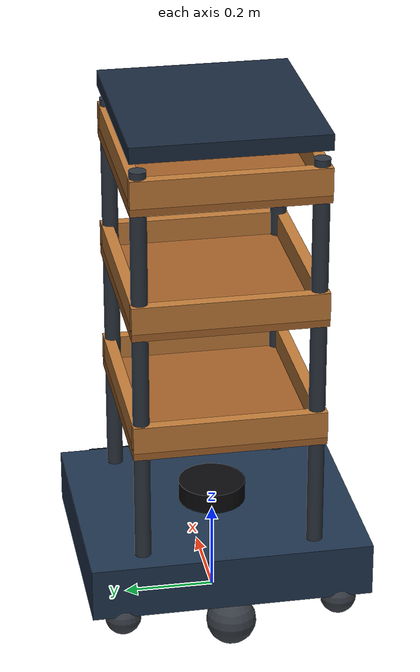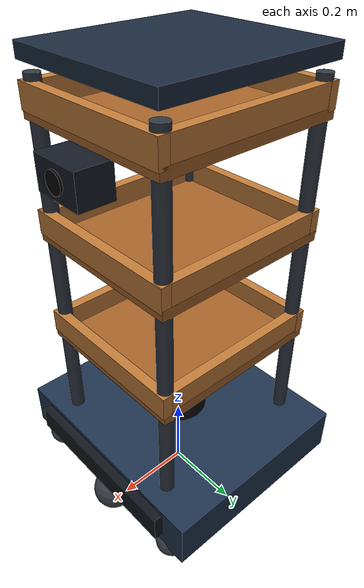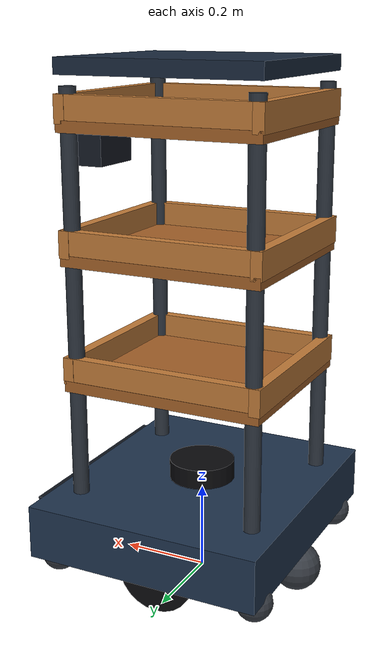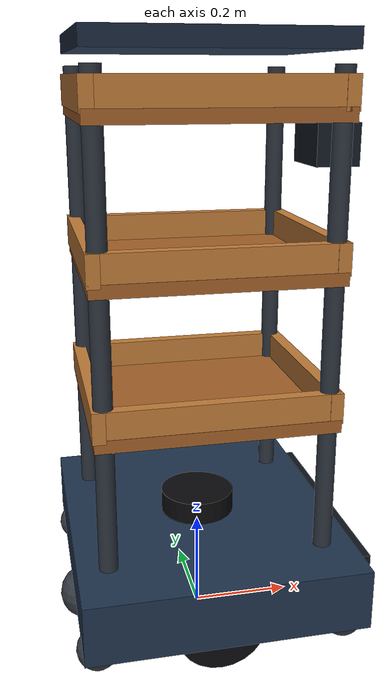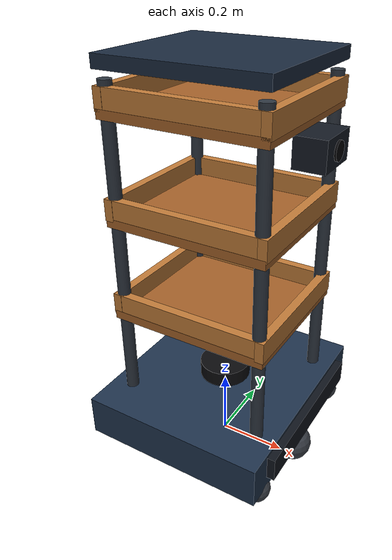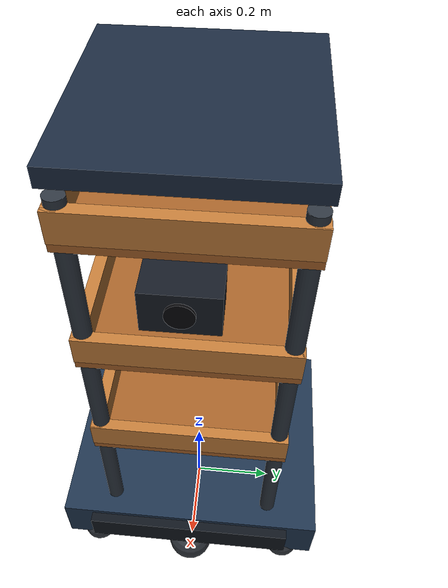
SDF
<?xml version="1.0"?>
<!--
  Generic Cafe Service AMR.
  SDF owns Gazebo geometry, collisions, inertials, joints, systems, and sensors.
  ROS-facing names are preserved by the Phase 4 launch and bridge.
-->
<sdf version="1.9">
  <model name="amr_robot">
    <pose>0 0 0 0 0 0</pose>
    <self_collide>false</self_collide>
    <allow_auto_disable>false</allow_auto_disable>

    <link name="base_footprint"/>

    <joint name="base_joint" type="fixed">
      <parent>base_footprint</parent>
      <child>base_link</child>
    </joint>

    <!-- Low, heavy chassis: nominal centre of mass z ~= 0.18 m. -->
    <link name="base_link">
      <pose>0 0 0.165 0 0 0</pose>
      <visual name="chassis_visual">
        <geometry><box><size>0.54 0.62 0.12</size></box></geometry>
        <material>
          <ambient>0.08 0.12 0.18 1</ambient>
          <diffuse>0.12 0.20 0.30 1</diffuse>
          <specular>0.25 0.30 0.35 1</specular>
        </material>
      </visual>
      <visual name="front_bumper_visual">
        <pose>0.275 0 0.015 0 0 0</pose>
        <geometry><box><size>0.035 0.48 0.07</size></box></geometry>
        <material>
          <ambient>0.04 0.05 0.07 1</ambient>
          <diffuse>0.06 0.08 0.11 1</diffuse>
        </material>
      </visual>
      <collision name="chassis_collision">
        <geometry><box><size>0.54 0.62 0.12</size></box></geometry>
      </collision>
      <collision name="front_bumper_collision">
        <pose>0.275 0 0.015 0 0 0</pose>
        <geometry><box><size>0.035 0.48 0.07</size></box></geometry>
      </collision>
      <inertial>
        <pose>0 0 0.015 0 0 0</pose>
        <mass>18.0</mass>
        <inertia>
          <ixx>0.594</ixx>
          <iyy>0.522</iyy>
          <izz>1.014</izz>
          <ixy>0</ixy><ixz>0</ixz><iyz>0</iyz>
        </inertia>
      </inertial>
    </link>

    <!-- Four slim supports create an open, readable service body. -->
    <link name="support_front_left">
      <pose>0.21 0.19 0.67 0 0 0</pose>
      <visual name="visual">
        <geometry><cylinder><radius>0.018</radius><length>0.90</length></cylinder></geometry>
        <material><ambient>0.12 0.14 0.17 1</ambient><diffuse>0.18 0.21 0.25 1</diffuse></material>
      </visual>
      <collision name="collision"><geometry><cylinder><radius>0.018</radius><length>0.90</length></cylinder></geometry></collision>
      <inertial><mass>0.20</mass><inertia><ixx>0.014</ixx><iyy>0.014</iyy><izz>0.000065</izz><ixy>0</ixy><ixz>0</ixz><iyz>0</iyz></inertia></inertial>
    </link>
    <joint name="support_front_left_joint" type="fixed"><parent>base_link</parent><child>support_front_left</child></joint>

    <link name="support_front_right">
      <pose>0.21 -0.19 0.67 0 0 0</pose>
      <visual name="visual">
        <geometry><cylinder><radius>0.018</radius><length>0.90</length></cylinder></geometry>
        <material><ambient>0.12 0.14 0.17 1</ambient><diffuse>0.18 0.21 0.25 1</diffuse></material>
      </visual>
      <collision name="collision"><geometry><cylinder><radius>0.018</radius><length>0.90</length></cylinder></geometry></collision>
      <inertial><mass>0.20</mass><inertia><ixx>0.014</ixx><iyy>0.014</iyy><izz>0.000065</izz><ixy>0</ixy><ixz>0</ixz><iyz>0</iyz></inertia></inertial>
    </link>
    <joint name="support_front_right_joint" type="fixed"><parent>base_link</parent><child>support_front_right</child></joint>

    <link name="support_rear_left">
      <pose>-0.21 0.19 0.67 0 0 0</pose>
      <visual name="visual">
        <geometry><cylinder><radius>0.018</radius><length>0.90</length></cylinder></geometry>
        <material><ambient>0.12 0.14 0.17 1</ambient><diffuse>0.18 0.21 0.25 1</diffuse></material>
      </visual>
      <collision name="collision"><geometry><cylinder><radius>0.018</radius><length>0.90</length></cylinder></geometry></collision>
      <inertial><mass>0.20</mass><inertia><ixx>0.014</ixx><iyy>0.014</iyy><izz>0.000065</izz><ixy>0</ixy><ixz>0</ixz><iyz>0</iyz></inertia></inertial>
    </link>
    <joint name="support_rear_left_joint" type="fixed"><parent>base_link</parent><child>support_rear_left</child></joint>

    <link name="support_rear_right">
      <pose>-0.21 -0.19 0.67 0 0 0</pose>
      <visual name="visual">
        <geometry><cylinder><radius>0.018</radius><length>0.90</length></cylinder></geometry>
        <material><ambient>0.12 0.14 0.17 1</ambient><diffuse>0.18 0.21 0.25 1</diffuse></material>
      </visual>
      <collision name="collision"><geometry><cylinder><radius>0.018</radius><length>0.90</length></cylinder></geometry></collision>
      <inertial><mass>0.20</mass><inertia><ixx>0.014</ixx><iyy>0.014</iyy><izz>0.000065</izz><ixy>0</ixy><ixz>0</ixz><iyz>0</iyz></inertia></inertial>
    </link>
    <joint name="support_rear_right_joint" type="fixed"><parent>base_link</parent><child>support_rear_right</child></joint>

    <!-- Each tray is a single maintainable link with a simple collision lip. -->
    <link name="tray_1">
      <pose>0 0 0.48 0 0 0</pose>
      <visual name="surface"><geometry><box><size>0.46 0.42 0.025</size></box></geometry><material><ambient>0.44 0.26 0.12 1</ambient><diffuse>0.64 0.38 0.16 1</diffuse></material></visual>
      <visual name="front_lip"><pose>0.22 0 0.035 0 0 0</pose><geometry><box><size>0.025 0.42 0.06</size></box></geometry><material><ambient>0.55 0.32 0.14 1</ambient><diffuse>0.75 0.48 0.22 1</diffuse></material></visual>
      <visual name="rear_lip"><pose>-0.22 0 0.035 0 0 0</pose><geometry><box><size>0.025 0.42 0.06</size></box></geometry><material><ambient>0.55 0.32 0.14 1</ambient><diffuse>0.75 0.48 0.22 1</diffuse></material></visual>
      <visual name="left_lip"><pose>0 0.197 0.035 0 0 0</pose><geometry><box><size>0.46 0.025 0.06</size></box></geometry><material><ambient>0.55 0.32 0.14 1</ambient><diffuse>0.75 0.48 0.22 1</diffuse></material></visual>
      <visual name="right_lip"><pose>0 -0.197 0.035 0 0 0</pose><geometry><box><size>0.46 0.025 0.06</size></box></geometry><material><ambient>0.55 0.32 0.14 1</ambient><diffuse>0.75 0.48 0.22 1</diffuse></material></visual>
      <collision name="surface_collision"><geometry><box><size>0.46 0.42 0.025</size></box></geometry></collision>
      <collision name="front_lip_collision"><pose>0.22 0 0.035 0 0 0</pose><geometry><box><size>0.025 0.42 0.06</size></box></geometry></collision>
      <collision name="rear_lip_collision"><pose>-0.22 0 0.035 0 0 0</pose><geometry><box><size>0.025 0.42 0.06</size></box></geometry></collision>
      <inertial><mass>1.2</mass><inertia><ixx>0.018</ixx><iyy>0.022</iyy><izz>0.039</izz><ixy>0</ixy><ixz>0</ixz><iyz>0</iyz></inertia></inertial>
    </link>
    <joint name="tray_1_joint" type="fixed"><parent>base_link</parent><child>tray_1</child></joint>

    <link name="tray_2">
      <pose>0 0 0.76 0 0 0</pose>
      <visual name="surface"><geometry><box><size>0.46 0.42 0.025</size></box></geometry><material><ambient>0.44 0.26 0.12 1</ambient><diffuse>0.64 0.38 0.16 1</diffuse></material></visual>
      <visual name="front_lip"><pose>0.22 0 0.035 0 0 0</pose><geometry><box><size>0.025 0.42 0.06</size></box></geometry><material><ambient>0.55 0.32 0.14 1</ambient><diffuse>0.75 0.48 0.22 1</diffuse></material></visual>
      <visual name="rear_lip"><pose>-0.22 0 0.035 0 0 0</pose><geometry><box><size>0.025 0.42 0.06</size></box></geometry><material><ambient>0.55 0.32 0.14 1</ambient><diffuse>0.75 0.48 0.22 1</diffuse></material></visual>
      <visual name="left_lip"><pose>0 0.197 0.035 0 0 0</pose><geometry><box><size>0.46 0.025 0.06</size></box></geometry><material><ambient>0.55 0.32 0.14 1</ambient><diffuse>0.75 0.48 0.22 1</diffuse></material></visual>
      <visual name="right_lip"><pose>0 -0.197 0.035 0 0 0</pose><geometry><box><size>0.46 0.025 0.06</size></box></geometry><material><ambient>0.55 0.32 0.14 1</ambient><diffuse>0.75 0.48 0.22 1</diffuse></material></visual>
      <collision name="surface_collision"><geometry><box><size>0.46 0.42 0.025</size></box></geometry></collision>
      <collision name="front_lip_collision"><pose>0.22 0 0.035 0 0 0</pose><geometry><box><size>0.025 0.42 0.06</size></box></geometry></collision>
      <collision name="rear_lip_collision"><pose>-0.22 0 0.035 0 0 0</pose><geometry><box><size>0.025 0.42 0.06</size></box></geometry></collision>
      <inertial><mass>1.2</mass><inertia><ixx>0.018</ixx><iyy>0.022</iyy><izz>0.039</izz><ixy>0</ixy><ixz>0</ixz><iyz>0</iyz></inertia></inertial>
    </link>
    <joint name="tray_2_joint" type="fixed"><parent>base_link</parent><child>tray_2</child></joint>

    <link name="tray_3">
      <pose>0 0 1.04 0 0 0</pose>
      <visual name="surface"><geometry><box><size>0.46 0.42 0.025</size></box></geometry><material><ambient>0.44 0.26 0.12 1</ambient><diffuse>0.64 0.38 0.16 1</diffuse></material></visual>
      <visual name="front_lip"><pose>0.22 0 0.035 0 0 0</pose><geometry><box><size>0.025 0.42 0.06</size></box></geometry><material><ambient>0.55 0.32 0.14 1</ambient><diffuse>0.75 0.48 0.22 1</diffuse></material></visual>
      <visual name="rear_lip"><pose>-0.22 0 0.035 0 0 0</pose><geometry><box><size>0.025 0.42 0.06</size></box></geometry><material><ambient>0.55 0.32 0.14 1</ambient><diffuse>0.75 0.48 0.22 1</diffuse></material></visual>
      <visual name="left_lip"><pose>0 0.197 0.035 0 0 0</pose><geometry><box><size>0.46 0.025 0.06</size></box></geometry><material><ambient>0.55 0.32 0.14 1</ambient><diffuse>0.75 0.48 0.22 1</diffuse></material></visual>
      <visual name="right_lip"><pose>0 -0.197 0.035 0 0 0</pose><geometry><box><size>0.46 0.025 0.06</size></box></geometry><material><ambient>0.55 0.32 0.14 1</ambient><diffuse>0.75 0.48 0.22 1</diffuse></material></visual>
      <collision name="surface_collision"><geometry><box><size>0.46 0.42 0.025</size></box></geometry></collision>
      <collision name="front_lip_collision"><pose>0.22 0 0.035 0 0 0</pose><geometry><box><size>0.025 0.42 0.06</size></box></geometry></collision>
      <collision name="rear_lip_collision"><pose>-0.22 0 0.035 0 0 0</pose><geometry><box><size>0.025 0.42 0.06</size></box></geometry></collision>
      <inertial><mass>1.2</mass><inertia><ixx>0.018</ixx><iyy>0.022</iyy><izz>0.039</izz><ixy>0</ixy><ixz>0</ixz><iyz>0</iyz></inertia></inertial>
    </link>
    <joint name="tray_3_joint" type="fixed"><parent>base_link</parent><child>tray_3</child></joint>

    <link name="top_cap">
      <pose>0 0 1.16 0 0 0</pose>
      <visual name="visual"><geometry><box><size>0.46 0.42 0.035</size></box></geometry><material><ambient>0.07 0.10 0.15 1</ambient><diffuse>0.10 0.16 0.24 1</diffuse></material></visual>
      <collision name="collision"><geometry><box><size>0.46 0.42 0.035</size></box></geometry></collision>
      <inertial><mass>0.35</mass><inertia><ixx>0.006</ixx><iyy>0.006</iyy><izz>0.011</izz><ixy>0</ixy><ixz>0</ixz><iyz>0</iyz></inertia></inertial>
    </link>
    <joint name="top_cap_joint" type="fixed"><parent>base_link</parent><child>top_cap</child></joint>

    <!-- Future payload attachment frames; no payload simulation in Phase 4. -->
    <link name="tray_1_payload"/>
    <joint name="tray_1_payload_joint" type="fixed"><parent>tray_1</parent><child>tray_1_payload</child></joint>
    <link name="tray_2_payload"/>
    <joint name="tray_2_payload_joint" type="fixed"><parent>tray_2</parent><child>tray_2_payload</child></joint>
    <link name="tray_3_payload"/>
    <joint name="tray_3_payload_joint" type="fixed"><parent>tray_3</parent><child>tray_3_payload</child></joint>

    <!-- Main drive wheels: radius 0.09 m, separation 0.42 m. -->
    <link name="wheel_left_link">
      <pose>0 0.21 0.09 -1.5707963 0 0</pose>
      <visual name="visual"><geometry><cylinder><radius>0.09</radius><length>0.045</length></cylinder></geometry><material><ambient>0.025 0.025 0.03 1</ambient><diffuse>0.04 0.04 0.05 1</diffuse></material></visual>
      <collision name="collision">
        <geometry><cylinder><radius>0.09</radius><length>0.045</length></cylinder></geometry>
        <surface><friction><ode><mu>1.0</mu><mu2>1.0</mu2><slip1>0.000</slip1><slip2>0.0</slip2></ode></friction></surface>
      </collision>
      <inertial><mass>0.35</mass><inertia><ixx>0.00142</ixx><iyy>0.00142</iyy><izz>0.00284</izz><ixy>0</ixy><ixz>0</ixz><iyz>0</iyz></inertia></inertial>
    </link>
    <joint name="wheel_left_joint" type="revolute">
      <parent>base_link</parent><child>wheel_left_link</child>
      <axis><xyz>0 0 1</xyz><limit><lower>-1.79769e+308</lower><upper>1.79769e+308</upper><effort>20</effort></limit></axis>
    </joint>

    <link name="wheel_right_link">
      <pose>0 -0.21 0.09 -1.5707963 0 0</pose>
      <visual name="visual"><geometry><cylinder><radius>0.09</radius><length>0.045</length></cylinder></geometry><material><ambient>0.025 0.025 0.03 1</ambient><diffuse>0.04 0.04 0.05 1</diffuse></material></visual>
      <collision name="collision">
        <geometry><cylinder><radius>0.09</radius><length>0.045</length></cylinder></geometry>
        <surface><friction><ode><mu>1.0</mu><mu2>1.0</mu2><slip1>0.000</slip1><slip2>0.0</slip2></ode></friction></surface>
      </collision>
      <inertial><mass>0.35</mass><inertia><ixx>0.00142</ixx><iyy>0.00142</iyy><izz>0.00284</izz><ixy>0</ixy><ixz>0</ixz><iyz>0</iyz></inertia></inertial>
    </link>
    <joint name="wheel_right_joint" type="revolute">
      <parent>base_link</parent><child>wheel_right_link</child>
      <axis><xyz>0 0 1</xyz><limit><lower>-1.79769e+308</lower><upper>1.79769e+308</upper><effort>20</effort></limit></axis>
    </joint>

    <!-- Phase 4K diagnostic-only wheel telemetry; not part of the ROS application contract. -->
    <plugin filename="gz-sim-joint-state-publisher-system" name="gz::sim::systems::JointStatePublisher">
      <joint_name>wheel_left_joint</joint_name>
      <joint_name>wheel_right_joint</joint_name>
    </plugin>

    <!-- Passive support spheres reduce caster snagging in the warehouse world. -->
    <link name="caster_front_link">
      <pose>0.24 0 0.055 0 0 0</pose>
      <visual name="visual"><geometry><sphere><radius>0.055</radius></sphere></geometry><material><ambient>0.15 0.16 0.18 1</ambient><diffuse>0.22 0.24 0.27 1</diffuse></material></visual>
      <collision name="collision"><geometry><sphere><radius>0.055</radius></sphere></geometry><surface><friction><ode><mu>0.01</mu><mu2>0.01</mu2><slip1>0.2</slip1><slip2>0.2</slip2></ode></friction></surface></collision>
      <inertial><mass>0.15</mass><inertia><ixx>0.00018</ixx><iyy>0.00018</iyy><izz>0.00018</izz><ixy>0</ixy><ixz>0</ixz><iyz>0</iyz></inertia></inertial>
    </link>
    <joint name="caster_front_joint" type="ball"><parent>base_link</parent><child>caster_front_link</child></joint>

    <link name="caster_rear_link">
      <pose>-0.24 0 0.055 0 0 0</pose>
      <visual name="visual"><geometry><sphere><radius>0.055</radius></sphere></geometry><material><ambient>0.15 0.16 0.18 1</ambient><diffuse>0.22 0.24 0.27 1</diffuse></material></visual>
      <collision name="collision"><geometry><sphere><radius>0.055</radius></sphere></geometry><surface><friction><ode><mu>0.01</mu><mu2>0.01</mu2><slip1>0.2</slip1><slip2>0.2</slip2></ode></friction></surface></collision>
      <inertial><mass>0.15</mass><inertia><ixx>0.00018</ixx><iyy>0.00018</iyy><izz>0.00018</izz><ixy>0</ixy><ixz>0</ixz><iyz>0</iyz></inertia></inertial>
    </link>
    <joint name="caster_rear_joint" type="ball"><parent>base_link</parent><child>caster_rear_link</child></joint>

    <!-- Lateral corner supports keep the tall service stack stable during turns. -->
    <link name="stability_front_left_link">
      <pose>0.24 0.24 0.09 0 0 0</pose>
      <visual name="visual"><geometry><sphere><radius>0.04</radius></sphere></geometry><material><ambient>0.15 0.16 0.18 1</ambient><diffuse>0.22 0.24 0.27 1</diffuse></material></visual>
      <collision name="collision"><geometry><sphere><radius>0.04</radius></sphere></geometry><surface><friction><ode><mu>0.01</mu><mu2>0.01</mu2><slip1>0.2</slip1><slip2>0.2</slip2></ode></friction></surface></collision>
      <inertial><mass>0.10</mass><inertia><ixx>0.0001</ixx><iyy>0.0001</iyy><izz>0.0001</izz><ixy>0</ixy><ixz>0</ixz><iyz>0</iyz></inertia></inertial>
    </link>
    <joint name="stability_front_left_joint" type="ball"><parent>base_link</parent><child>stability_front_left_link</child></joint>

    <link name="stability_front_right_link">
      <pose>0.24 -0.24 0.09 0 0 0</pose>
      <visual name="visual"><geometry><sphere><radius>0.04</radius></sphere></geometry><material><ambient>0.15 0.16 0.18 1</ambient><diffuse>0.22 0.24 0.27 1</diffuse></material></visual>
      <collision name="collision"><geometry><sphere><radius>0.04</radius></sphere></geometry><surface><friction><ode><mu>0.01</mu><mu2>0.01</mu2><slip1>0.2</slip1><slip2>0.2</slip2></ode></friction></surface></collision>
      <inertial><mass>0.10</mass><inertia><ixx>0.0001</ixx><iyy>0.0001</iyy><izz>0.0001</izz><ixy>0</ixy><ixz>0</ixz><iyz>0</iyz></inertia></inertial>
    </link>
    <joint name="stability_front_right_joint" type="ball"><parent>base_link</parent><child>stability_front_right_link</child></joint>

    <link name="stability_rear_left_link">
      <pose>-0.24 0.24 0.09 0 0 0</pose>
      <visual name="visual"><geometry><sphere><radius>0.04</radius></sphere></geometry><material><ambient>0.15 0.16 0.18 1</ambient><diffuse>0.22 0.24 0.27 1</diffuse></material></visual>
      <collision name="collision"><geometry><sphere><radius>0.04</radius></sphere></geometry><surface><friction><ode><mu>0.01</mu><mu2>0.01</mu2><slip1>0.2</slip1><slip2>0.2</slip2></ode></friction></surface></collision>
      <inertial><mass>0.10</mass><inertia><ixx>0.0001</ixx><iyy>0.0001</iyy><izz>0.0001</izz><ixy>0</ixy><ixz>0</ixz><iyz>0</iyz></inertia></inertial>
    </link>
    <joint name="stability_rear_left_joint" type="ball"><parent>base_link</parent><child>stability_rear_left_link</child></joint>

    <link name="stability_rear_right_link">
      <pose>-0.24 -0.24 0.09 0 0 0</pose>
      <visual name="visual"><geometry><sphere><radius>0.04</radius></sphere></geometry><material><ambient>0.15 0.16 0.18 1</ambient><diffuse>0.22 0.24 0.27 1</diffuse></material></visual>
      <collision name="collision"><geometry><sphere><radius>0.04</radius></sphere></geometry><surface><friction><ode><mu>0.01</mu><mu2>0.01</mu2><slip1>0.2</slip1><slip2>0.2</slip2></ode></friction></surface></collision>
      <inertial><mass>0.10</mass><inertia><ixx>0.0001</ixx><iyy>0.0001</iyy><izz>0.0001</izz><ixy>0</ixy><ixz>0</ixz><iyz>0</iyz></inertia></inertial>
    </link>
    <joint name="stability_rear_right_joint" type="ball"><parent>base_link</parent><child>stability_rear_right_link</child></joint>

    <!-- Sensor mounting frames. -->
    <link name="base_scan">
      <pose>0 0 0.25 0 0 0</pose>
      <visual name="housing"><geometry><cylinder><radius>0.075</radius><length>0.045</length></cylinder></geometry><material><ambient>0.02 0.02 0.025 1</ambient><diffuse>0.04 0.04 0.05 1</diffuse></material></visual>
      <collision name="housing_collision"><geometry><cylinder><radius>0.075</radius><length>0.045</length></cylinder></geometry></collision>
      <inertial><mass>0.20</mass><inertia><ixx>0.00028</ixx><iyy>0.00028</iyy><izz>0.00056</izz><ixy>0</ixy><ixz>0</ixz><iyz>0</iyz></inertia></inertial>
      <sensor name="front_lidar" type="gpu_lidar">
        <always_on>true</always_on>
        <visualize>false</visualize>
        <update_rate>10</update_rate>
        <topic>/model/amr_robot/scan</topic>
        <gz_frame_id>base_scan</gz_frame_id>
        <ray>
          <scan>
            <horizontal>
              <samples>720</samples>
              <resolution>1</resolution>
              <min_angle>-2.35619449</min_angle>
              <max_angle>2.35619449</max_angle>
            </horizontal>
            <vertical>
              <samples>1</samples>
              <resolution>1</resolution>
              <min_angle>0</min_angle>
              <max_angle>0</max_angle>
            </vertical>
          </scan>
          <range><min>0.12</min><max>12.0</max><resolution>0.01</resolution></range>
          <noise><type>gaussian</type><mean>0.0</mean><stddev>0.005</stddev></noise>
        </ray>
      </sensor>
    </link>
    <joint name="scan_joint" type="fixed"><parent>base_link</parent><child>base_scan</child></joint>

    <link name="imu_link">
      <pose>0 0 0.25 0 0 0</pose>
      <inertial><mass>0.10</mass><inertia><ixx>0.00002</ixx><iyy>0.00002</iyy><izz>0.00002</izz><ixy>0</ixy><ixz>0</ixz><iyz>0</iyz></inertia></inertial>
      <sensor name="imu_sensor" type="imu">
        <always_on>true</always_on>
        <update_rate>100</update_rate>
        <topic>/model/amr_robot/imu</topic>
        <gz_frame_id>imu_link</gz_frame_id>
      </sensor>
    </link>
    <joint name="imu_joint" type="fixed"><parent>base_link</parent><child>imu_link</child></joint>

    <!-- Forward-facing main camera; ROS optical frame remains unchanged. -->
    <link name="camera_link">
      <pose>0.255 0 0.98 0 0 0</pose>
      <visual name="housing"><geometry><box><size>0.085 0.13 0.08</size></box></geometry><material><ambient>0.05 0.06 0.08 1</ambient><diffuse>0.08 0.10 0.14 1</diffuse></material></visual>
      <visual name="lens_ring"><pose>0.044 0 0 0 1.5707963 0</pose><geometry><cylinder><radius>0.025</radius><length>0.008</length></cylinder></geometry><material><ambient>0.01 0.01 0.015 1</ambient><diffuse>0.02 0.02 0.03 1</diffuse></material></visual>
      <collision name="housing_collision"><geometry><box><size>0.085 0.13 0.08</size></box></geometry></collision>
      <inertial><mass>0.25</mass><inertia><ixx>0.00045</ixx><iyy>0.00025</iyy><izz>0.00055</izz><ixy>0</ixy><ixz>0</ixz><iyz>0</iyz></inertia></inertial>
      <sensor name="front_rgb_camera" type="camera">
        <always_on>true</always_on>
        <visualize>false</visualize>
        <update_rate>15</update_rate>
        <topic>/model/amr_robot/camera/image_raw</topic>
        <gz_frame_id>camera_rgb_optical_frame</gz_frame_id>
        <camera name="front_rgb_camera">
          <horizontal_fov>1.22173</horizontal_fov>
          <image><width>640</width><height>480</height><format>R8G8B8</format></image>
          <clip><near>0.05</near><far>20.0</far></clip>
          <noise><type>gaussian</type><mean>0.0</mean><stddev>0.002</stddev></noise>
          <camera_info_topic>/model/amr_robot/camera/camera_info</camera_info_topic>
        </camera>
      </sensor>
    </link>
    <joint name="camera_joint" type="fixed"><parent>base_link</parent><child>camera_link</child></joint>

    <link name="camera_rgb_frame"/>
    <joint name="camera_rgb_joint" type="fixed"><parent>camera_link</parent><child>camera_rgb_frame</child></joint>
    <link name="camera_rgb_optical_frame"/>
    <joint name="camera_rgb_optical_joint" type="fixed">
      <parent>camera_rgb_frame</parent><child>camera_rgb_optical_frame</child>
      <pose>0 0 0 -1.5707963 0 -1.5707963</pose>
    </joint>

    <!-- Native Gazebo Sim motion system. -->
    <plugin filename="gz-sim-diff-drive-system" name="gz::sim::systems::DiffDrive">
      <left_joint>wheel_left_joint</left_joint>
      <right_joint>wheel_right_joint</right_joint>
      <wheel_separation>0.42</wheel_separation>
      <wheel_radius>0.09</wheel_radius>
      <topic>/model/amr_robot/cmd_vel</topic>
      <odom_topic>/model/amr_robot/odometry</odom_topic>
      <tf_topic>/model/amr_robot/tf</tf_topic>
      <frame_id>odom</frame_id>
      <child_frame_id>base_footprint</child_frame_id>
      <odom_publish_frequency>30</odom_publish_frequency>
      <max_linear_acceleration>0.5</max_linear_acceleration>
      <min_linear_acceleration>-0.5</min_linear_acceleration>
      <max_angular_acceleration>1.0</max_angular_acceleration>
      <min_angular_acceleration>-1.0</min_angular_acceleration>
      <max_linear_velocity>0.6</max_linear_velocity>
      <min_linear_velocity>-0.6</min_linear_velocity>
      <max_angular_velocity>1.2</max_angular_velocity>
      <min_angular_velocity>-1.2</min_angular_velocity>
    </plugin>
  </model>
</sdf>
